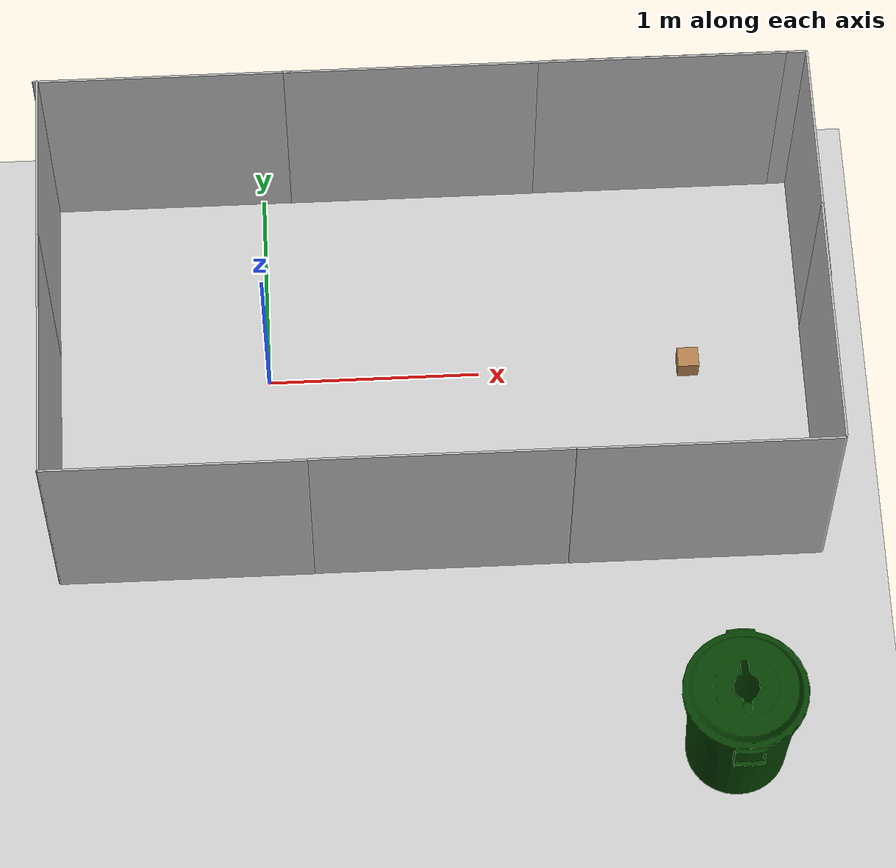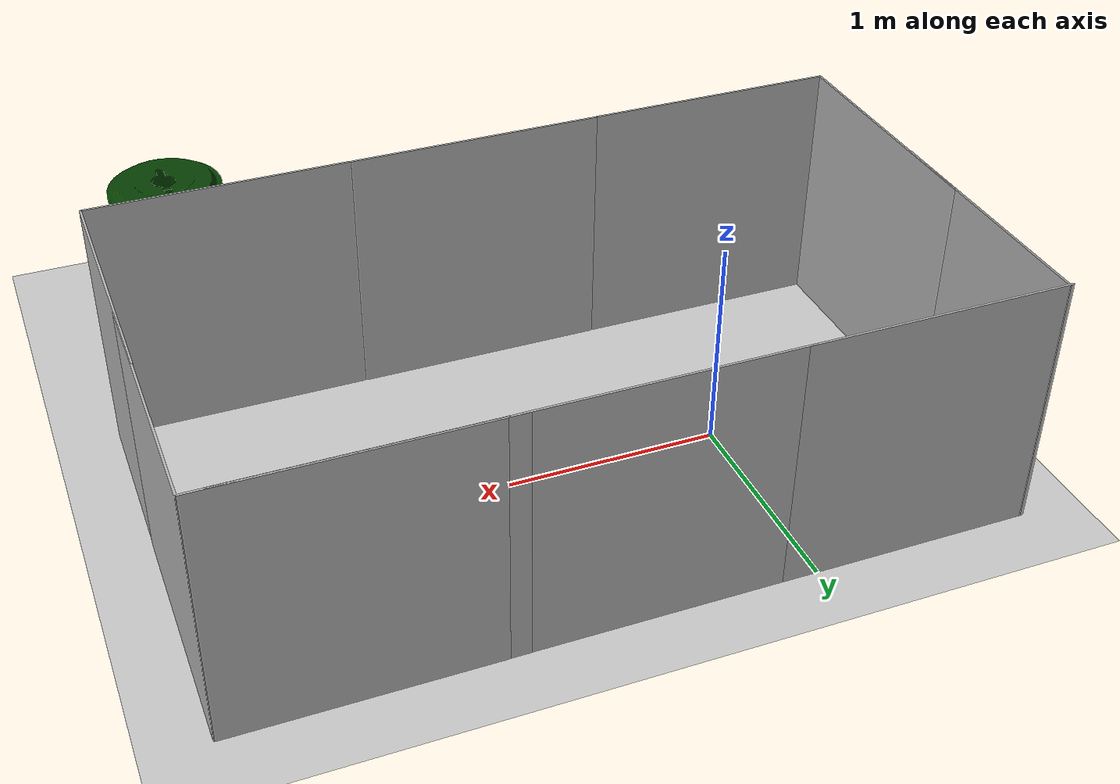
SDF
<sdf version="1.6">
 <world name="default">
  <scene><ambient>0.4 0.4 0.4 1</ambient><background>0.7 0.7 0.7 1</background><shadows>1</shadows></scene>
  <light name="sun" type="directional">
   <pose>0 0 10 0 -0 0</pose>
   <diffuse>0.8 0.8 0.8 1</diffuse>
   <specular>0.2 0.2 0.2 1</specular>
   <attenuation>
    <range>1000</range>
    <constant>0.9</constant>
    <linear>0.01</linear>
    <quadratic>0.001</quadratic>
   </attenuation>
   <direction>-0.5 0.1 -0.9</direction>
  </light>
  <model name="ground_plane">
   <static>1</static>
   <link name="link">
    <collision name="collision">
     <geometry><plane><normal>0 0 1</normal><size>100 100</size></plane></geometry>
     <surface><friction><ode><mu>100</mu><mu2>50</mu2></ode></friction></surface>
    </collision>
    <visual name="visual">
     <cast_shadows>0</cast_shadows>
     <geometry><plane><normal>0 0 1</normal><size>100 100</size></plane></geometry>
     <material>
      <script><uri>file://media/materials/scripts/gazebo.material</uri><name>Gazebo/Grey</name></script>
     </material>
    </visual>
   </link>
  </model>
  <physics name="default_physics" default="0" type="ode">
   <real_time_update_rate>1000</real_time_update_rate>
   <max_step_size>0.001</max_step_size>
   <real_time_factor>1</real_time_factor>
   <ode>
    <solver>
     <type>quick</type>
     <iters>150</iters>
     <precon_iters>0</precon_iters>
     <sor>1.4</sor>
     <use_dynamic_moi_rescaling>1</use_dynamic_moi_rescaling>
    </solver>
    <constraints>
     <cfm>1e-05</cfm>
     <erp>0.2</erp>
     <contact_max_correcting_vel>2000</contact_max_correcting_vel>
     <contact_surface_layer>0.01</contact_surface_layer>
    </constraints>
   </ode>
  </physics>
  <gravity>0 0 -9.8</gravity>
  <magnetic_field>6e-06 2.3e-05 -4.2e-05</magnetic_field>
  <atmosphere type="adiabatic"/>
  <spherical_coordinates>
   <surface_model>EARTH_WGS84</surface_model>
   <latitude_deg>0</latitude_deg>
   <longitude_deg>0</longitude_deg>
   <elevation>0</elevation>
   <heading_deg>0</heading_deg>
  </spherical_coordinates>
  <model name="first_2015_trash_can">
   <link name="link">
    <inertial>
     <pose>0 0 0.3683 0 -0 0</pose>
     <mass>4.83076</mass>
     <inertia>
      <ixx>0.281534</ixx>
      <ixy>0</ixy>
      <ixz>0</ixz>
      <iyy>0.281534</iyy>
      <iyz>0</iyz>
      <izz>0.126223</izz>
     </inertia>
    </inertial>
    <visual name="visual">
     <geometry><mesh><uri>model://first_2015_trash_can/meshes/trash_can.dae</uri></mesh></geometry>
    </visual>
    <collision name="collision">
     <geometry><mesh><uri>model://first_2015_trash_can/meshes/trash_can.dae</uri></mesh></geometry>
    </collision>
   </link>
   <pose>2.07347 -1.97725 -3e-06 2e-06 1.5e-05 -0.001298</pose>
  </model>
  <model name="nist_maze_wall_120">
   <static>1</static>
   <link name="nist_maze_wall_120_link">
    <collision name="collision">
     <geometry>
      <mesh><uri>model://nist_maze_wall_120/meshes/nist_maze_wall_120.dae</uri><scale>1 1 1</scale></mesh>
     </geometry>
    </collision>
    <visual name="visual">
     <geometry>
      <mesh><uri>model://nist_maze_wall_120/meshes/nist_maze_wall_120.dae</uri><scale>1 1 1</scale></mesh>
     </geometry>
    </visual>
   </link>
   <pose>-0.427957 0.398133 0 0 -0 0</pose>
  </model>
  <model name="nist_maze_wall_120_0">
   <static>1</static>
   <link name="nist_maze_wall_120_link">
    <collision name="collision">
     <geometry>
      <mesh><uri>model://nist_maze_wall_120/meshes/nist_maze_wall_120.dae</uri><scale>1 1 1</scale></mesh>
     </geometry>
    </collision>
    <visual name="visual">
     <geometry>
      <mesh><uri>model://nist_maze_wall_120/meshes/nist_maze_wall_120.dae</uri><scale>1 1 1</scale></mesh>
     </geometry>
    </visual>
   </link>
   <pose>0.724025 0.39782 0 0 -0 0</pose>
  </model>
  <model name="nist_maze_wall_120_1">
   <static>1</static>
   <link name="nist_maze_wall_120_link">
    <collision name="collision">
     <geometry>
      <mesh><uri>model://nist_maze_wall_120/meshes/nist_maze_wall_120.dae</uri><scale>1 1 1</scale></mesh>
     </geometry>
    </collision>
    <visual name="visual">
     <geometry>
      <mesh><uri>model://nist_maze_wall_120/meshes/nist_maze_wall_120.dae</uri><scale>1 1 1</scale></mesh>
     </geometry>
    </visual>
   </link>
   <pose>1.87712 0.39892 0 0 -0 0</pose>
  </model>
  <model name="nist_maze_wall_120_2">
   <static>1</static>
   <link name="nist_maze_wall_120_link">
    <collision name="collision">
     <geometry>
      <mesh><uri>model://nist_maze_wall_120/meshes/nist_maze_wall_120.dae</uri><scale>1 1 1</scale></mesh>
     </geometry>
    </collision>
    <visual name="visual">
     <geometry>
      <mesh><uri>model://nist_maze_wall_120/meshes/nist_maze_wall_120.dae</uri><scale>1 1 1</scale></mesh>
     </geometry>
    </visual>
   </link>
   <pose>1.96747 0.400136 0 0 -0 0</pose>
  </model>
  <model name="nist_maze_wall_120_1_clone">
   <static>1</static>
   <link name="nist_maze_wall_120_link">
    <collision name="collision">
     <geometry>
      <mesh><uri>model://nist_maze_wall_120/meshes/nist_maze_wall_120.dae</uri><scale>1 1 1</scale></mesh>
     </geometry>
    </collision>
    <visual name="visual">
     <geometry>
      <mesh><uri>model://nist_maze_wall_120/meshes/nist_maze_wall_120.dae</uri><scale>1 1 1</scale></mesh>
     </geometry>
    </visual>
   </link>
   <pose>3.16385 0.405209 0 0 -0 1.5708</pose>
  </model>
  <model name="nist_maze_wall_120_1_clone_clone">
   <static>1</static>
   <link name="nist_maze_wall_120_link">
    <collision name="collision">
     <geometry>
      <mesh><uri>model://nist_maze_wall_120/meshes/nist_maze_wall_120.dae</uri><scale>1 1 1</scale></mesh>
     </geometry>
    </collision>
    <visual name="visual">
     <geometry>
      <mesh><uri>model://nist_maze_wall_120/meshes/nist_maze_wall_120.dae</uri><scale>1 1 1</scale></mesh>
     </geometry>
    </visual>
   </link>
   <pose>3.16169 -0.40445 0 0 -0 1.5708</pose>
  </model>
  <model name="nist_maze_wall_120_1_clone_0">
   <static>1</static>
   <link name="nist_maze_wall_120_link">
    <collision name="collision">
     <geometry>
      <mesh><uri>model://nist_maze_wall_120/meshes/nist_maze_wall_120.dae</uri><scale>1 1 1</scale></mesh>
     </geometry>
    </collision>
    <visual name="visual">
     <geometry>
      <mesh><uri>model://nist_maze_wall_120/meshes/nist_maze_wall_120.dae</uri><scale>1 1 1</scale></mesh>
     </geometry>
    </visual>
   </link>
   <pose>1.96411 -1.60429 0 0 -0 0</pose>
  </model>
  <model name="nist_maze_wall_120_1_clone_1">
   <static>1</static>
   <link name="nist_maze_wall_120_link">
    <collision name="collision">
     <geometry>
      <mesh><uri>model://nist_maze_wall_120/meshes/nist_maze_wall_120.dae</uri><scale>1 1 1</scale></mesh>
     </geometry>
    </collision>
    <visual name="visual">
     <geometry>
      <mesh><uri>model://nist_maze_wall_120/meshes/nist_maze_wall_120.dae</uri><scale>1 1 1</scale></mesh>
     </geometry>
    </visual>
   </link>
   <pose>0.77299 -1.60332 0 0 -0 0</pose>
  </model>
  <model name="nist_maze_wall_120_1_clone_2">
   <static>1</static>
   <link name="nist_maze_wall_120_link">
    <collision name="collision">
     <geometry>
      <mesh><uri>model://nist_maze_wall_120/meshes/nist_maze_wall_120.dae</uri><scale>1 1 1</scale></mesh>
     </geometry>
    </collision>
    <visual name="visual">
     <geometry>
      <mesh><uri>model://nist_maze_wall_120/meshes/nist_maze_wall_120.dae</uri><scale>1 1 1</scale></mesh>
     </geometry>
    </visual>
   </link>
   <pose>-0.411264 -1.6048 0 0 -0 0</pose>
  </model>
  <model name="nist_maze_wall_120_1_clone_clone_0">
   <static>1</static>
   <link name="nist_maze_wall_120_link">
    <collision name="collision">
     <geometry>
      <mesh><uri>model://nist_maze_wall_120/meshes/nist_maze_wall_120.dae</uri><scale>1 1 1</scale></mesh>
     </geometry>
    </collision>
    <visual name="visual">
     <geometry>
      <mesh><uri>model://nist_maze_wall_120/meshes/nist_maze_wall_120.dae</uri><scale>1 1 1</scale></mesh>
     </geometry>
    </visual>
   </link>
   <pose>-0.404806 0.407002 0 0 -0 1.5708</pose>
  </model>
  <model name="nist_maze_wall_120_1_clone_clone_1">
   <static>1</static>
   <link name="nist_maze_wall_120_link">
    <collision name="collision">
     <geometry>
      <mesh><uri>model://nist_maze_wall_120/meshes/nist_maze_wall_120.dae</uri><scale>1 1 1</scale></mesh>
     </geometry>
    </collision>
    <visual name="visual">
     <geometry>
      <mesh><uri>model://nist_maze_wall_120/meshes/nist_maze_wall_120.dae</uri><scale>1 1 1</scale></mesh>
     </geometry>
    </visual>
   </link>
   <pose>-0.402598 -0.40941 0 0 -0 1.5708</pose>
  </model>
  <model name="wood_cube_10cm">
   <link name="link">
    <pose>0 0 0.05 0 -0 0</pose>
    <inertial>
     <mass>0.5167</mass>
     <inertia>
      <ixx>0.000861167</ixx>
      <ixy>0</ixy>
      <ixz>0</ixz>
      <iyy>0.000861167</iyy>
      <iyz>0</iyz>
      <izz>0.000861167</izz>
     </inertia>
    </inertial>
    <collision name="collision">
     <geometry><box><size>0.1 0.1 0.1</size></box></geometry>
     <surface>
      <contact>
       <poissons_ratio>0.347</poissons_ratio>
       <elastic_modulus>8.8e+09</elastic_modulus>
       <ode><kp>100000</kp><kd>100</kd><max_vel>100</max_vel><min_depth>0.001</min_depth></ode>
      </contact>
      <friction>
       <torsional>
        <coefficient>1</coefficient>
        <use_patch_radius>0</use_patch_radius>
        <surface_radius>0.01</surface_radius>
       </torsional>
      </friction>
     </surface>
    </collision>
    <visual name="visual">
     <geometry><box><size>0.1 0.1 0.1</size></box></geometry>
     <material>
      <script><uri>file://media/materials/scripts/gazebo.material</uri><name>Gazebo/Wood</name></script>
     </material>
    </visual>
   </link>
   <pose>2.00123 0.001456 -0.001013 0 -0 0</pose>
  </model>
 </world>
</sdf>
